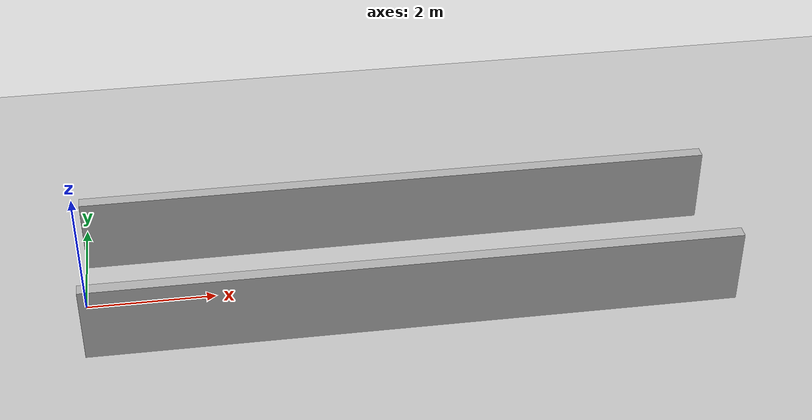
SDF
<?xml version="1.0"?>
<sdf version="1.6">
  <world name="v2-04e2-corridor-s4714">
    <gravity>0 0 -9.81</gravity>
    <physics name="v2_deterministic" type="ode">
      <max_step_size>0.002</max_step_size>
      <real_time_update_rate>500</real_time_update_rate>
    </physics>
    <include>
      <uri>model://sun</uri>
    </include>
    <include>
      <uri>model://ground_plane</uri>
    </include>
    <model name="corridor-left">
      <static>true</static>
      <pose>5.006409076 1.106321341 0.600000000 0 0 -0.002132664</pose>
      <link name="link">
        <collision name="collision">
          <geometry>
            <box>
              <size>10.000000 0.200000 1.200000</size>
            </box>
          </geometry>
        </collision>
        <visual name="visual">
          <geometry>
            <box>
              <size>10.000000 0.200000 1.200000</size>
            </box>
          </geometry>
        </visual>
      </link>
    </model>
    <model name="corridor-right">
      <static>true</static>
      <pose>4.997725307 -1.113398550 0.600000000 0 0 -0.003542525</pose>
      <link name="link">
        <collision name="collision">
          <geometry>
            <box>
              <size>10.000000 0.200000 1.200000</size>
            </box>
          </geometry>
        </collision>
        <visual name="visual">
          <geometry>
            <box>
              <size>10.000000 0.200000 1.200000</size>
            </box>
          </geometry>
        </visual>
      </link>
    </model>
  </world>
</sdf>
